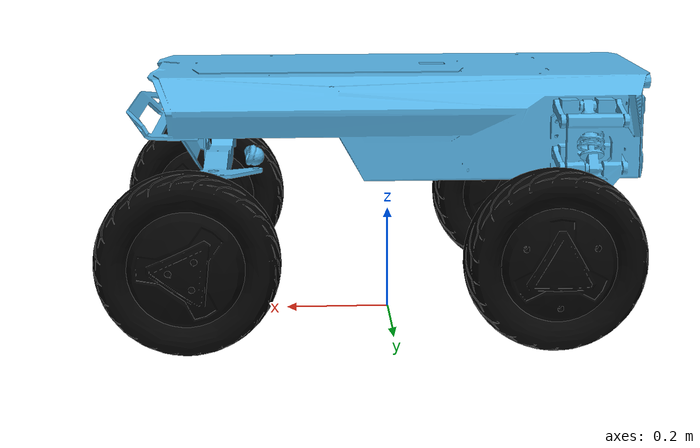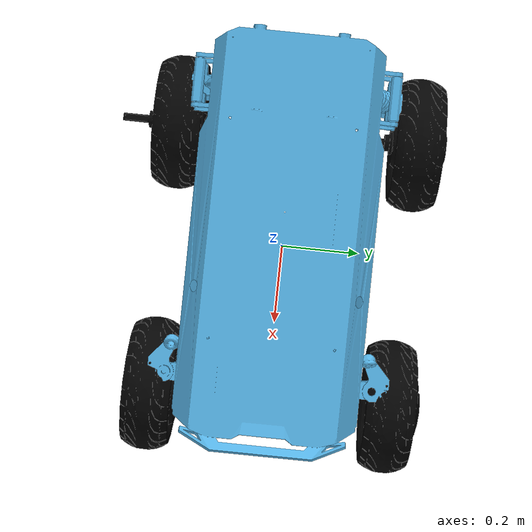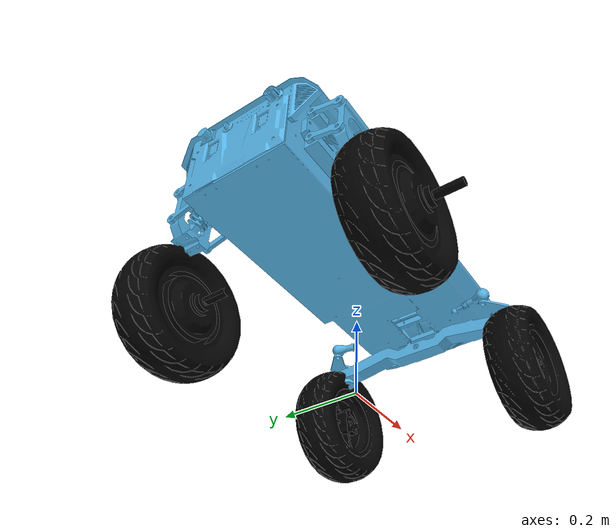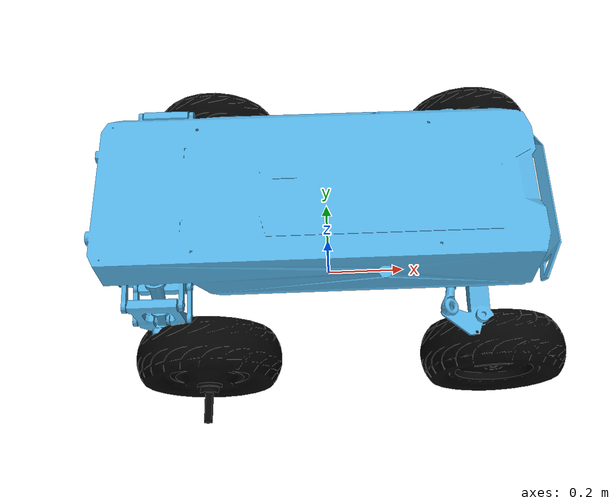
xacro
<?xml version="1.0"?>
<robot xmlns:xacro="http://www.ros.org/wiki/xacro">

  <!-- Include the inertial values from the following -->
  <xacro:include filename="inertial_macros.xacro"/>
  <xacro:include filename="meshes.xacro"/>

  <!-- Constants for robot dimensions -->
  <xacro:property name="z_base_to_wheel" value="-0.19558" />
  <xacro:property name="x_base_to_rear" value="-0.28" />
  <xacro:property name="x_base_to_front" value="0.37142" />
  <xacro:property name="y_base_to_wheel" value="0.2925" />
  <xacro:property name="max_steer_angle_central" value="0.461" />

  <link name="base_link"/>

  <joint name="chassis_joint" type="fixed">
    <parent link="base_link"/>
    <child link="chassis"/>
    <origin rpy="0 0 0" xyz="0 0 0.37"/>
  </joint>

  <link name="chassis">
    <xacro:mesh name="chassis"/>
    <!-- Box approximates body envelope; origin offset matches inertial CoM -->
    <collision>
      <origin xyz="0.046 0 -0.12" rpy="0 0 0"/>
      <geometry>
        <box size="0.65 0.50 0.26"/>
      </geometry>
    </collision>
    <xacro:inertial_chassis/>
  </link>

  <link name="rear_left_wheel">
    <xacro:mesh name="rear_left_wheel"/>
    <!-- Cylinder axis = local Z, which is the axle direction after the pi/2 joint rotation -->
    <collision>
      <origin xyz="0 0 0" rpy="0 0 0"/>
      <geometry>
        <cylinder radius="0.165" length="0.12"/>
      </geometry>
    </collision>
    <xacro:inertial_wheel/>
  </link>
  <joint name="rear_left_wheel_joint" type="continuous">
    <parent link="chassis"/>
    <child link="rear_left_wheel"/>
    <origin xyz="${x_base_to_rear} ${y_base_to_wheel} ${z_base_to_wheel}" rpy="${pi/2} 0 0" />
    <axis xyz="0 0 -1" />
    <dynamics damping="0.2" friction="0.0"/>
    <limit effort="200.0" velocity="17.0"/>
  </joint>
  <xacro:gazebo_friction reference="rear_left_wheel"/>

  <link name="rear_right_wheel">
    <xacro:mesh name="rear_right_wheel"/>
    <collision>
      <origin xyz="0 0 0" rpy="0 0 0"/>
      <geometry>
        <cylinder radius="0.165" length="0.12"/>
      </geometry>
    </collision>
    <xacro:inertial_wheel/>
  </link>
  <joint name="rear_right_wheel_joint" type="continuous">
    <parent link="chassis"/>
    <child link="rear_right_wheel"/>
    <origin xyz="${x_base_to_rear} -${y_base_to_wheel} ${z_base_to_wheel}" rpy="${pi/2} 0 0" />
    <axis xyz="0 0 -1"/>
    <dynamics damping="0.2" friction="0.0"/>
    <limit effort="200.0" velocity="17.0"/>
  </joint>
  <xacro:gazebo_friction reference="rear_right_wheel"/>

  <link name="front_left_steering_link">
    <xacro:virtual/>
    <xacro:inertial_steering_link/>
  </link>
  <joint name="front_left_steering_joint" type="revolute">
    <parent link="chassis"/>
    <child link="front_left_steering_link"/>
    <origin xyz="${x_base_to_front} ${y_base_to_wheel} ${z_base_to_wheel}" rpy="${pi/2} 0 0" />
    <axis   xyz="0 1 0" />
    <limit  lower="-${max_steer_angle_central}"  upper="${max_steer_angle_central}"  effort="50.0"  velocity="10.0" />
    <dynamics damping="0.2"/>
  </joint>

  <link name="front_left_wheel">
    <xacro:mesh name="front_left_wheel"/>
    <collision>
      <origin xyz="0 0 0" rpy="0 0 0"/>
      <geometry>
        <cylinder radius="0.165" length="0.12"/>
      </geometry>
    </collision>
    <xacro:inertial_wheel/>
  </link>
  <joint name="front_left_wheel_joint" type="continuous">
    <parent link="front_left_steering_link"/>
    <child link="front_left_wheel"/>
    <origin xyz="0 0 0" rpy="0 0 0" />
    <axis   xyz="0 0 -1" />
  </joint>

  <link name="front_right_steering_link">
    <xacro:virtual/>
    <xacro:inertial_steering_link/>
  </link>
  <joint name="front_right_steering_joint" type="revolute">
    <parent link="chassis"/>
    <child link="front_right_steering_link"/>
    <origin xyz="${x_base_to_front}  -${y_base_to_wheel} ${z_base_to_wheel}" rpy="${pi/2} 0 0" />
    <axis   xyz="0 1 0" />
    <limit  lower="-${max_steer_angle_central}"  upper="${max_steer_angle_central}"  effort="50.0"  velocity="10.0" />
    <dynamics damping="0.2"/>
  </joint>

  <link name="front_right_wheel">
    <xacro:mesh name="front_right_wheel"/>
    <collision>
      <origin xyz="0 0 0" rpy="0 0 0"/>
      <geometry>
        <cylinder radius="0.165" length="0.12"/>
      </geometry>
    </collision>
    <xacro:inertial_wheel/>
  </link>
  <joint name="front_right_wheel_joint" type="continuous">
    <parent link="front_right_steering_link"/>
    <child link="front_right_wheel"/>
    <origin xyz="0 0 0" rpy="0 0 0" />
    <axis   xyz="0 0 -1" />
  </joint>

  <xacro:gz_material reference="chassis"
    ambient="0.35 0.35 0.35 1" diffuse="0.55 0.55 0.55 1" specular="0.3 0.3 0.3 1"/>

  <xacro:gz_material reference="rear_left_wheel"
    ambient="0.05 0.05 0.05 1" diffuse="0.12 0.12 0.12 1" specular="0.05 0.05 0.05 1"/>
  <xacro:gz_material reference="rear_right_wheel"
    ambient="0.05 0.05 0.05 1" diffuse="0.12 0.12 0.12 1" specular="0.05 0.05 0.05 1"/>
  <xacro:gz_material reference="front_left_wheel"
    ambient="0.05 0.05 0.05 1" diffuse="0.12 0.12 0.12 1" specular="0.05 0.05 0.05 1"/>
  <xacro:gz_material reference="front_right_wheel"
    ambient="0.05 0.05 0.05 1" diffuse="0.12 0.12 0.12 1" specular="0.05 0.05 0.05 1"/>

</robot>

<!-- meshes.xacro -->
<robot xmlns:xacro="http://www.ros.org/wiki/xacro" >

  <!-- Visual-only: .dae meshes have degenerate submeshes that DARTsim rejects
       as collision geometry. Collision is provided by simple primitives below. -->
  <xacro:macro name="mesh" params="name">
    <visual>
      <origin xyz="0 0 0" rpy="0 0 0"/>
      <geometry>
        <mesh filename="file://$(find hunter_description)/meshes/${name}.dae" />
      </geometry>
    </visual>
  </xacro:macro>

  <xacro:macro name="virtual">
    <visual>
      <origin xyz="0 0 0" rpy="0 0 0"/>
      <geometry>
        <cylinder length="0.01" radius="0.01"/>
      </geometry>
      <material name="invisible">
        <color rgba="0.0 0.0 0.0 0.0"/>
      </material>
    </visual>
  </xacro:macro>

  <!-- Gazebo Harmonic: Ogre2 ignores embedded .dae materials; set them explicitly -->
  <xacro:macro name="gz_material" params="reference ambient diffuse specular">
    <gazebo reference="${reference}">
      <visual>
        <material>
          <ambient>${ambient}</ambient>
          <diffuse>${diffuse}</diffuse>
          <specular>${specular}</specular>
        </material>
      </visual>
    </gazebo>
  </xacro:macro>

  <!-- Gazebo Harmonic: friction must be nested inside surface/friction/ode -->
  <xacro:macro name="gazebo_friction" params="reference">
    <gazebo reference="${reference}">
      <collision>
        <surface>
          <friction>
            <ode>
              <mu>1.0</mu>
              <mu2>0.5</mu2>
              <fdir1>1 0 0</fdir1>
            </ode>
          </friction>
          <contact>
            <ode>
              <kp>10000000.0</kp>
              <kd>1.0</kd>
            </ode>
          </contact>
        </surface>
      </collision>
    </gazebo>
  </xacro:macro>

</robot>
